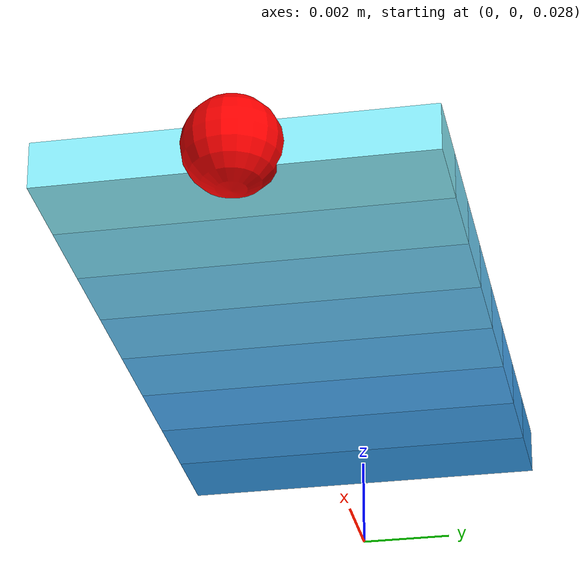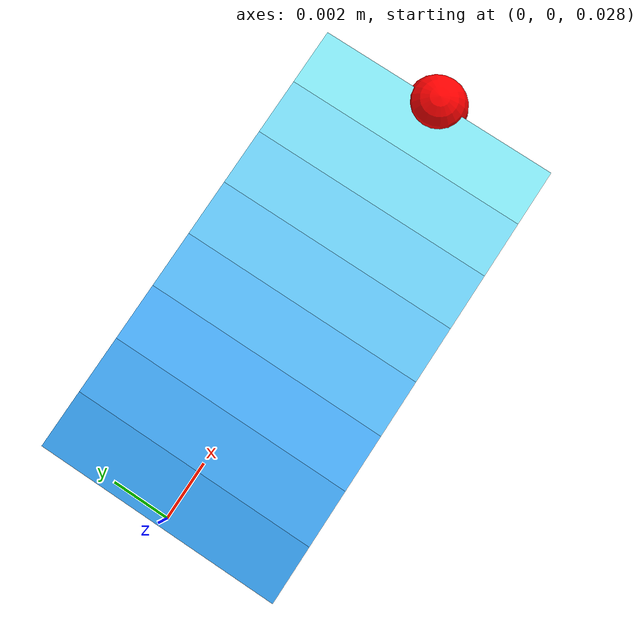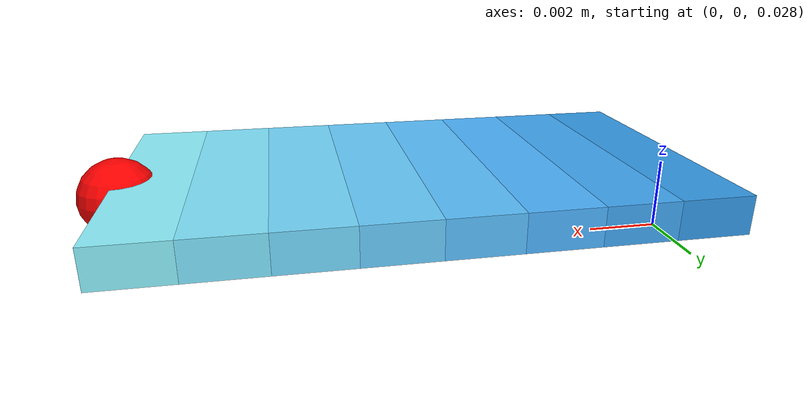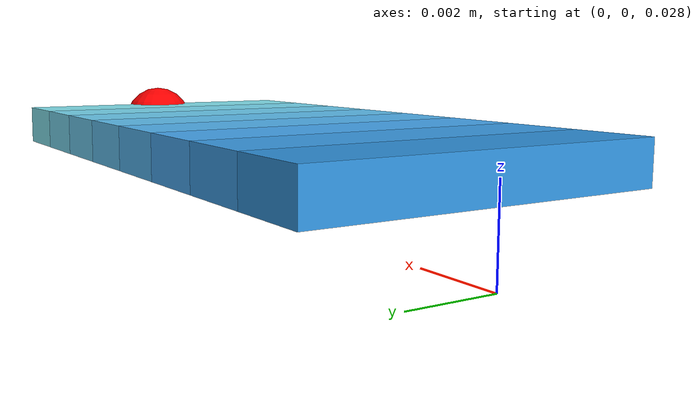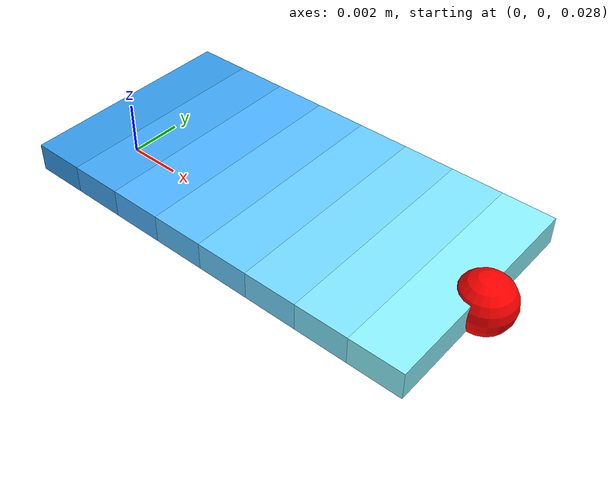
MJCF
<mujoco model="distributed_cantilever_beam">

  <option timestep="0.001" gravity="0 0 -9.81" integrator="implicitfast"/>
  <compiler angle="radian"/>

  <default>
    <geom friction="1 0.01 0.001"/>
    <joint damping="0.01"/>
  </default>

  <worldbody>

    <geom type="plane" size="2 2 0.1" rgba="0.95 0.95 0.95 1"/>

    <body name="base" pos="0 0 0.03">

      <!-- FIRST SEGMENT -->
      <body name="seg1" pos="0 0 0">
        <joint name="j1" type="hinge" axis="0 1 0" stiffness="0.02"/>

        <geom type="box"
              pos="0.0009375 0 0"
              size="0.0009375 0.004 0.0005"
              rgba="0.2 0.6 0.9 1"/>

        <!-- SEG2 -->
        <body name="seg2" pos="0.001875 0 0">
          <joint name="j2" type="hinge" axis="0 1 0" stiffness="0.02"/>

          <geom type="box"
                pos="0.0009375 0 0"
                size="0.0009375 0.004 0.0005"
                rgba="0.25 0.65 0.95 1"/>

          <!-- SEG3 -->
          <body name="seg3" pos="0.001875 0 0">
            <joint name="j3" type="hinge" axis="0 1 0" stiffness="0.02"/>

            <geom type="box"
                  pos="0.0009375 0 0"
                  size="0.0009375 0.004 0.0005"
                  rgba="0.3 0.7 1 1"/>

            <!-- SEG4 -->
            <body name="seg4" pos="0.001875 0 0">
              <joint name="j4" type="hinge" axis="0 1 0" stiffness="0.02"/>

              <geom type="box"
                    pos="0.0009375 0 0"
                    size="0.0009375 0.004 0.0005"
                    rgba="0.35 0.75 1 1"/>

              <!-- SEG5 -->
              <body name="seg5" pos="0.001875 0 0">
                <joint name="j5" type="hinge" axis="0 1 0" stiffness="0.02"/>

                <geom type="box"
                      pos="0.0009375 0 0"
                      size="0.0009375 0.004 0.0005"
                      rgba="0.4 0.8 1 1"/>

                <!-- SEG6 -->
                <body name="seg6" pos="0.001875 0 0">
                  <joint name="j6" type="hinge" axis="0 1 0" stiffness="0.02"/>

                  <geom type="box"
                        pos="0.0009375 0 0"
                        size="0.0009375 0.004 0.0005"
                        rgba="0.45 0.85 1 1"/>

                  <!-- SEG7 -->
                  <body name="seg7" pos="0.001875 0 0">
                    <joint name="j7" type="hinge" axis="0 1 0" stiffness="0.02"/>

                    <geom type="box"
                          pos="0.0009375 0 0"
                          size="0.0009375 0.004 0.0005"
                          rgba="0.5 0.9 1 1"/>

                    <!-- SEG8 -->
                    <body name="seg8" pos="0.001875 0 0">
                      <joint name="j8" type="hinge" axis="0 1 0" stiffness="0.02"/>

                      <geom type="box"
                            pos="0.0009375 0 0"
                            size="0.0009375 0.004 0.0005"
                            rgba="0.55 0.95 1 1"/>

                      <!-- TIP -->
                      <body name="tip" pos="0.001875 0 0">
                        <geom type="sphere" size="0.0008"
                              rgba="1 0 0 0.8"
                              contype="0" conaffinity="0"/>
                        <site name="tip_site" pos="0 0 0"
                              size="0.001" rgba="1 0 0 1"/>
                      </body>

                    </body>
                  </body>
                </body>
              </body>
            </body>
          </body>
        </body>
      </body>

    </body>
  </worldbody>
</mujoco>
